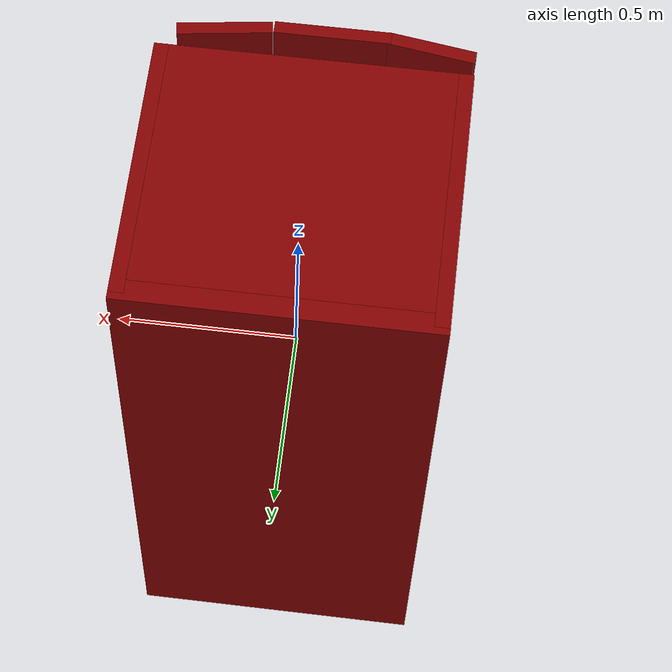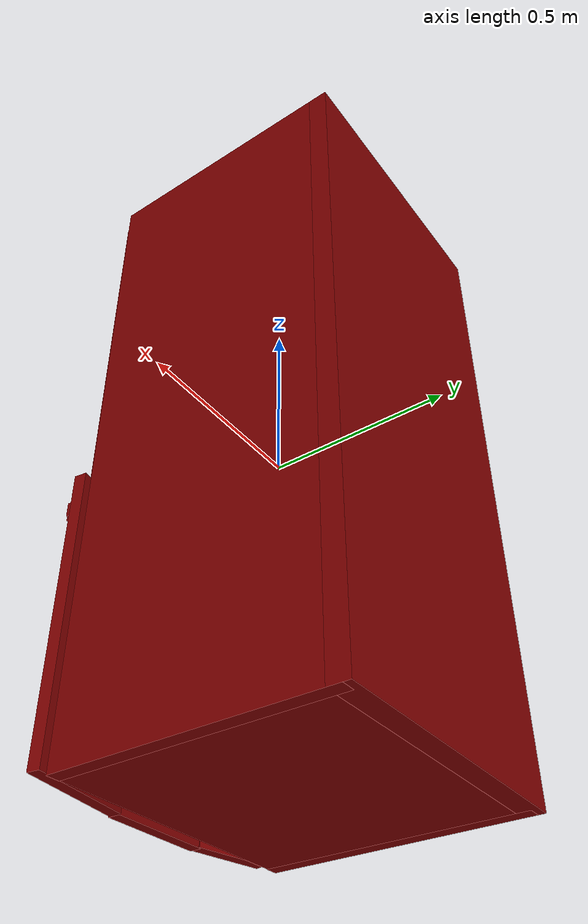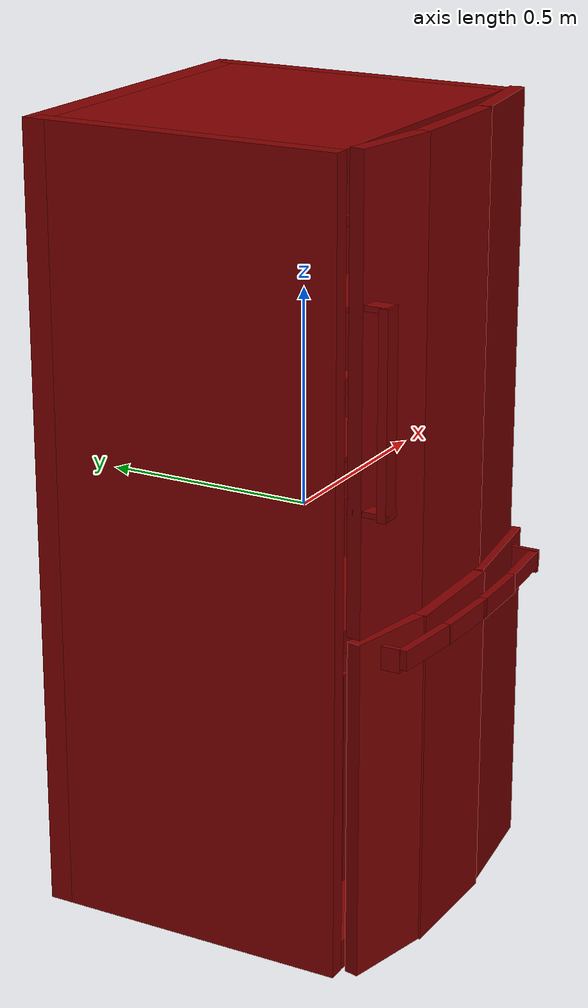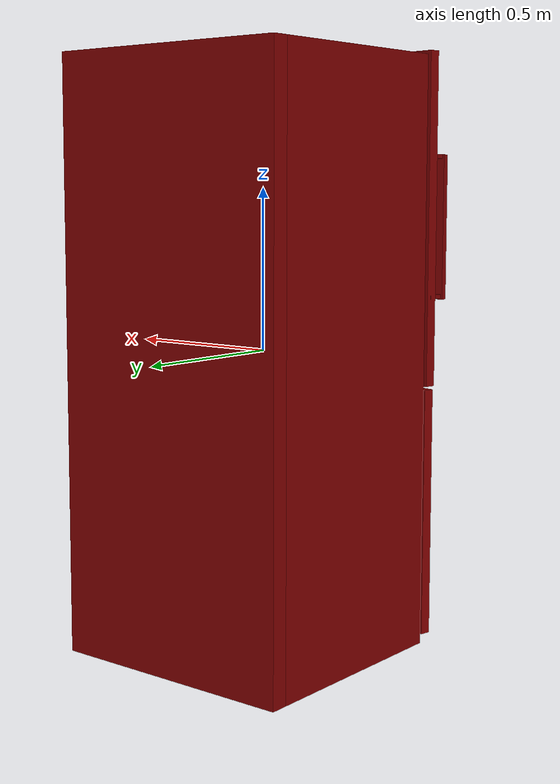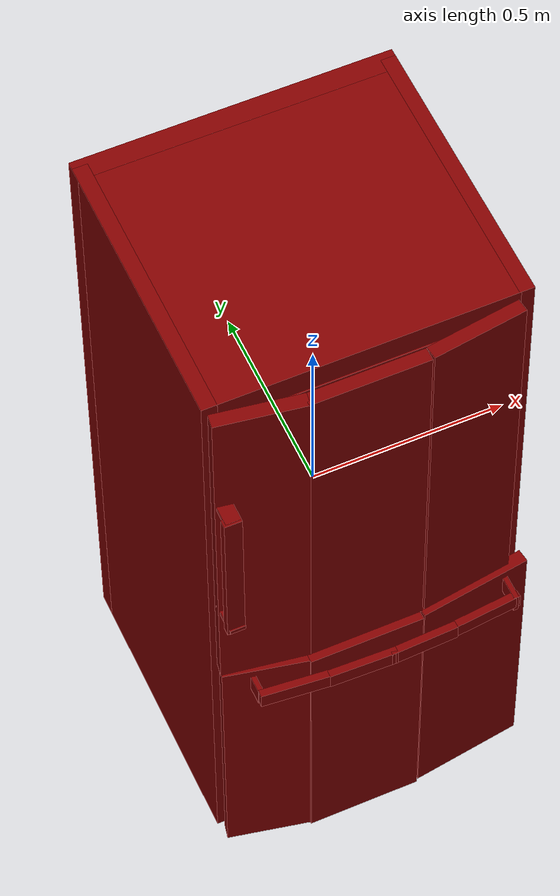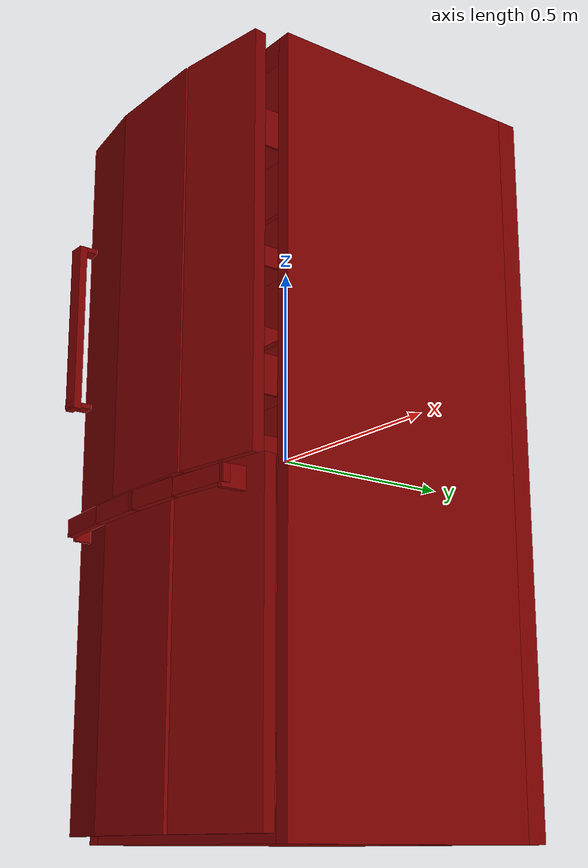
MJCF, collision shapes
<mujoco model="model">
  <compiler angle="radian"/>
  <asset>
    <mesh file="visuals/Body001.obj" name="Body001_vis"/>
    <mesh file="visuals/Door001.obj" name="Door001_vis"/>
    <mesh file="visuals/Door001_Clear.obj" name="Door001_Clear_vis"/>
    <mesh file="visuals/Drawer001.obj" name="Drawer001_vis"/>
    <texture file="visuals/T_BC001.png" name="Body001_material" type="2d"/>
    <material name="Body001_material" rgba="1 1 1 1.0" texture="Body001_material" shininess="2" specular="2"/>
    <texture file="visuals/T_BC001.png" name="Door001_material" type="2d"/>
    <material name="Door001_material" rgba="1 1 1 1.0" texture="Door001_material" shininess="2" specular="2"/>
    <texture file="visuals/T_BC001.png" name="Door001_Clear_material" type="2d"/>
    <material name="Door001_Clear_material" rgba="1 1 1 0.3596838116645813" texture="Door001_Clear_material" shininess="1" specular="1"/>
    <texture file="visuals/T_BC001.png" name="Drawer001_material" type="2d"/>
    <material name="Drawer001_material" rgba="1 1 1 1.0" texture="Drawer001_material" shininess="2" specular="2"/>
  </asset>
  <default>
    <default class="visual">
      <geom conaffinity="0" contype="0" group="1" type="mesh"/>
    </default>
    <default class="collision">
      <geom group="0" rgba="0.5 0 0 0.5"/>
    </default>
    <default class="spawn">
      <geom group="0" rgba="1 1 1 0.5" contype="0" conaffinity="0"/>
      <site group="0" rgba="1 1 1 0.5"/>
    </default>
    <default class="region">
      <geom group="1" conaffinity="0" contype="0" rgba="0 1 0 0"/>
    </default>
  </default>
  <worldbody>
    <body>
      <body name="object">
        <geom mesh="Body001_vis" type="mesh" solimp="0.998 0.998 0.001" solref="0.001 1" density="100" friction="0.95 0.3 0.1" class="visual" material="Body001_material"/>
        <geom class="collision" type="box" pos="-0.378594 0.067060 -0.013965" size="0.019155777990818024 0.3608422577381134 0.912087619304657" quat="1.0 0.0 0.0 0.0"/>
        <geom class="collision" type="box" pos="0.381758 0.067060 -0.013966" size="0.01870761066675186 0.3608422577381134 0.9120866060256958" quat="1.0 0.0 0.0 0.0"/>
        <geom class="collision" type="box" pos="0.001358 0.419301 -0.013966" size="0.3991181254386902 0.027650153264403343 0.9120854735374451" quat="1.0 0.0 0.0 0.0"/>
        <geom class="collision" type="box" pos="0.001718 0.067060 0.864691" size="0.36580175161361694 0.3608422577381134 0.03337714448571205" quat="1.0 0.0 0.0 0.0"/>
        <geom class="collision" type="box" pos="0.001718 0.067060 -0.145540" size="0.36580175161361694 0.3608422577381134 0.02629207819700241" quat="1.0 0.0 0.0 0.0"/>
        <geom class="collision" type="box" pos="0.001718 0.067318 -0.890700" size="0.36580175161361694 0.3605836033821106 0.034585967659950256" quat="1.0 0.0 0.0 0.0"/>
        <geom class="collision" type="box" pos="0.003957 0.073107 0.196298" size="0.36718666553497314 0.2812851667404175 0.005361652001738548" quat="1.0 0.0 0.0 0.0"/>
        <geom class="collision" type="box" pos="0.003957 0.077721 0.519944" size="0.36718666553497314 0.2803083658218384 0.005361646879464388" quat="1.0 0.0 0.0 0.0"/>
        <geom class="collision" type="box" pos="0.352952 0.052019 -0.722210" size="0.013005407527089119 0.31502023339271545 0.012969376519322395" quat="1.0 0.0 0.0 0.0"/>
        <geom class="collision" type="box" pos="-0.350924 0.052019 -0.722210" size="0.013005407527089119 0.31502023339271545 0.012969376519322395" quat="1.0 0.0 0.0 0.0"/>
        <body name="Door001">
          <joint axis="0.0 0.0 1.0" pos="0.364126 -0.352008 0.406059" limited="true" name="Door001_joint" range="0.0 1.5707963267948966" type="hinge" damping="1" frictionloss="1" armature=".01" stiffness="0.05"/>
          <geom mesh="Door001_vis" type="mesh" solimp="0.998 0.998 0.001" solref="0.001 1" density="100" friction="0.95 0.3 0.1" class="visual" material="Door001_material"/>
          <geom class="collision" type="box" pos="0.230738 -0.351328 0.399526" size="0.11987584084272385 0.01692153885960579 0.5122628211975098" quat="0.9976747632026672 0.0 0.0 0.06815465539693832"/>
          <geom class="collision" type="box" pos="-0.037926 -0.369584 0.399526" size="0.14644287526607513 0.016875427216291428 0.5122628211975098" quat="1.0 0.0 0.0 0.0"/>
          <geom class="collision" type="box" pos="-0.286908 -0.352526 0.399526" size="0.10983621329069138 0.017445452511310577 0.5122628211975098" quat="0.9968905448913574 0.0 0.0 -0.07879889011383057"/>
          <geom class="collision" type="box" pos="-0.375130 -0.367793 0.595543" size="0.019148865714669228 0.036234285682439804 0.006132364273071289" quat="1.0 0.0 0.0 0.0"/>
          <geom class="collision" type="box" pos="-0.375439 -0.372005 0.164614" size="0.019458351656794548 0.041055455803871155 0.006132364273071289" quat="1.0 0.0 0.0 0.0"/>
          <geom class="collision" type="box" pos="-0.378030 -0.398833 0.377965" size="0.02204965427517891 0.01052001677453518 0.22331146895885468" quat="1.0 0.0 0.0 0.0"/>
          <body name="Door001_Clear">
            <geom mesh="Door001_Clear_vis" type="mesh" solimp="0.998 0.998 0.001" solref="0.001 1" density="100" friction="0.95 0.3 0.1" class="visual" material="Door001_Clear_material"/>
            <geom class="collision" type="box" pos="-0.319344 -0.275222 0.687729" size="0.004141536541283131 0.04857324808835983 0.04720287024974823" quat="1.0 0.0 0.0 0.0"/>
            <geom class="collision" type="box" pos="0.001354 -0.320527 0.687729" size="0.31764817237854004 0.003521260339766741 0.04720290005207062" quat="1.0 0.0 0.0 0.0"/>
            <geom class="collision" type="box" pos="0.317362 -0.275222 0.687729" size="0.004836233798414469 0.04857324808835983 0.04720292612910271" quat="1.0 0.0 0.0 0.0"/>
            <geom class="collision" type="box" pos="-0.002139 -0.231302 0.687729" size="0.3207814693450928 0.004387729801237583 0.047202955931425095" quat="1.0 0.0 0.0 0.0"/>
            <geom class="collision" type="box" pos="0.000606 -0.275222 0.642447" size="0.31781530380249023 0.04857324808835983 0.0030051106587052345" quat="1.0 0.0 0.0 0.0"/>
            <geom class="collision" type="box" pos="0.000606 -0.275222 0.341165" size="0.3178154528141022 0.04857324808835983 0.0030051018111407757" quat="1.0 0.0 0.0 0.0"/>
            <geom class="collision" type="box" pos="-0.319344 -0.275222 0.364153" size="0.00414154352620244 0.04857324808835983 0.024909714236855507" quat="1.0 0.0 0.0 0.0"/>
            <geom class="collision" type="box" pos="0.000890 -0.229140 0.364153" size="0.31775328516960144 0.002615526784211397 0.024909736588597298" quat="1.0 0.0 0.0 0.0"/>
            <geom class="collision" type="box" pos="0.317362 -0.275222 0.364153" size="0.004836241248995066 0.04857324808835983 0.024909736588597298" quat="1.0 0.0 0.0 0.0"/>
            <geom class="collision" type="box" pos="0.001354 -0.320527 0.364153" size="0.31764936447143555 0.003521260339766741 0.02490975894033909" quat="1.0 0.0 0.0 0.0"/>
            <geom class="collision" type="box" pos="0.000606 -0.275222 0.036488" size="0.31781619787216187 0.04857324808835983 0.003005123697221279" quat="1.0 0.0 0.0 0.0"/>
            <geom class="collision" type="box" pos="-0.319344 -0.275222 0.081770" size="0.004141549114137888 0.04857324808835983 0.047203179448843" quat="1.0 0.0 0.0 0.0"/>
            <geom class="collision" type="box" pos="0.000890 -0.229130 0.081770" size="0.31775403022766113 0.002615526784211397 0.04720320180058479" quat="1.0 0.0 0.0 0.0"/>
            <geom class="collision" type="box" pos="0.317362 -0.275222 0.081770" size="0.004836246836930513 0.04857324808835983 0.047203224152326584" quat="1.0 0.0 0.0 0.0"/>
            <geom class="collision" type="box" pos="0.001354 -0.320527 0.081770" size="0.31765010952949524 0.003521260339766741 0.047203246504068375" quat="1.0 0.0 0.0 0.0"/>
          </body>
        </body>
        <body name="Drawer001">
          <joint axis="0.0 -1.0 0.0" pos="0.001227 -0.039753 -0.513966" limited="true" name="Drawer001_joint" range="0.0 0.5" type="slide" damping="1" frictionloss="1" armature=".01" stiffness="0.05"/>
          <geom mesh="Drawer001_vis" type="mesh" solimp="0.998 0.998 0.001" solref="0.001 1" density="100" friction="0.95 0.3 0.1" class="visual" material="Drawer001_material"/>
          <geom class="collision" type="box" pos="-0.346770 0.036842 -0.461970" size="0.01085581537336111 0.3316759765148163 0.24363622069358826" quat="1.0 0.0 0.0 0.0"/>
          <geom class="collision" type="box" pos="0.343009 0.036842 -0.461970" size="0.010516480542719364 0.3316761553287506 0.24363626539707184" quat="1.0 0.0 0.0 0.0"/>
          <geom class="collision" type="box" pos="-0.000308 0.355287 -0.461970" size="0.3471439480781555 0.013232797384262085 0.24363629519939423" quat="1.0 0.0 0.0 0.0"/>
          <geom class="collision" type="box" pos="-0.000308 0.032621 -0.694376" size="0.3471439480781555 0.32678648829460144 0.0121445432305336" quat="1.0 0.0 0.0 0.0"/>
          <geom class="collision" type="box" pos="-0.286317 -0.357346 -0.515215" size="0.10743478685617447 0.016986416652798653 0.39078274369239807" quat="0.9943527579307556 0.0 0.0 -0.10612525045871735"/>
          <geom class="collision" type="box" pos="-0.040784 -0.384042 -0.515215" size="0.1464429348707199 0.016875416040420532 0.39078280329704285" quat="1.0 0.0 0.0 0.0"/>
          <geom class="collision" type="box" pos="0.253892 -0.358083 -0.515215" size="0.14611393213272095 0.01692153885960579 0.39078280329704285" quat="0.9976747632026672 0.0 0.0 0.06815465539693832"/>
          <geom class="collision" type="box" pos="0.339167 -0.391074 -0.174435" size="0.006266914773732424 0.035947706550359726 0.026796642690896988" quat="1.0 0.0 0.0 0.0"/>
          <geom class="collision" type="box" pos="-0.321381 -0.382638 -0.174435" size="0.006266914773732424 0.0266755148768425 0.026796642690896988" quat="1.0 0.0 0.0 0.0"/>
          <geom class="collision" type="box" pos="-0.240103 -0.424528 -0.170056" size="0.022417370229959488 0.08717069774866104 0.009740541689097881" quat="0.5234331488609314 0.4754132330417633 -0.5234331488609314 0.4754132032394409"/>
          <geom class="collision" type="box" pos="-0.069454 -0.436675 -0.170056" size="0.022417370229959488 0.08717069774866104 0.009740541689097881" quat="0.5079357028007507 0.4919363260269165 -0.5079357028007507 0.4919362962245941"/>
          <geom class="collision" type="box" pos="0.089244 -0.436761 -0.170056" size="0.022417370229959488 0.08717069774866104 0.009740541689097881" quat="0.5079357028007507 0.4919363260269165 0.5079357028007507 -0.4919362962245941"/>
          <geom class="collision" type="box" pos="0.260038 -0.424243 -0.170161" size="0.08948531746864319 0.009927761740982533 0.02061539888381958" quat="0.9989737272262573 0.0 0.0 0.04529357701539993"/>
        </body>
        <geom class="region" name="reg_main" type="box" pos="0.001357999999999998 0.030680999999999986 0.0" size="0.399108 0.41627000000000003 0.926024"/>
      </body>
    </body>
  </worldbody>
  <actuator>
    <motor name="Door001_joint_actuator" joint="Door001_joint" gear="50"/>
    <motor name="Drawer001_joint_actuator" joint="Drawer001_joint" gear="50"/>
  </actuator>
</mujoco>
